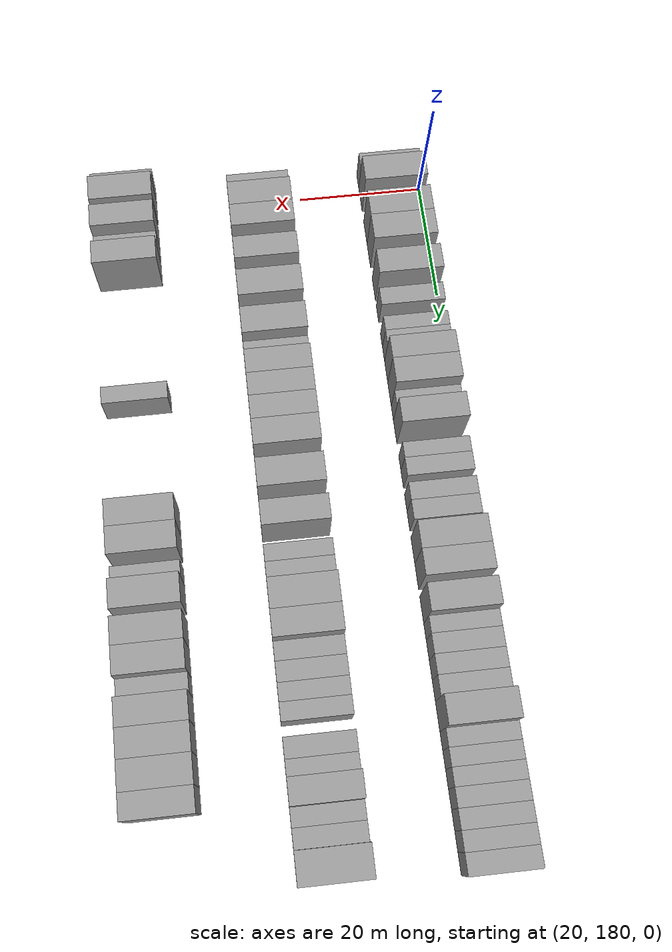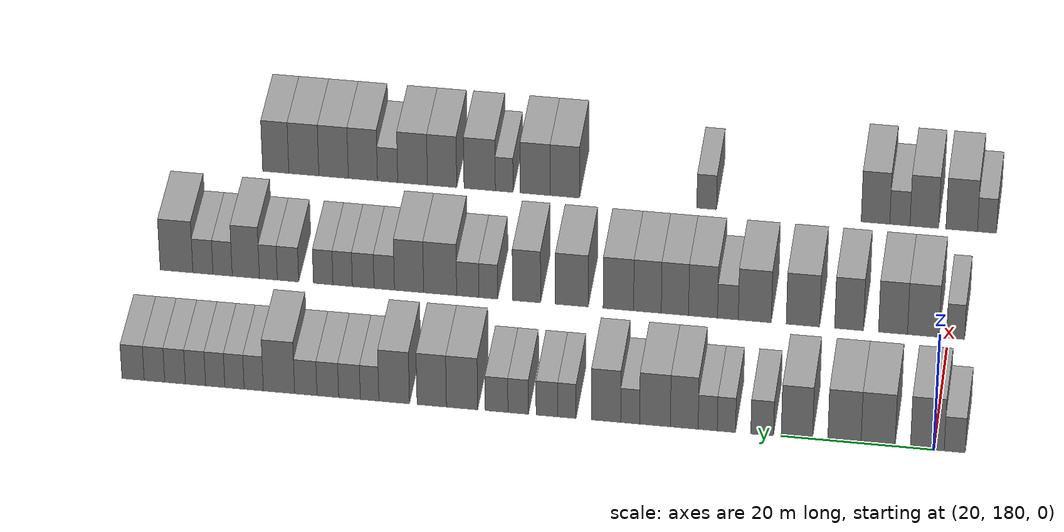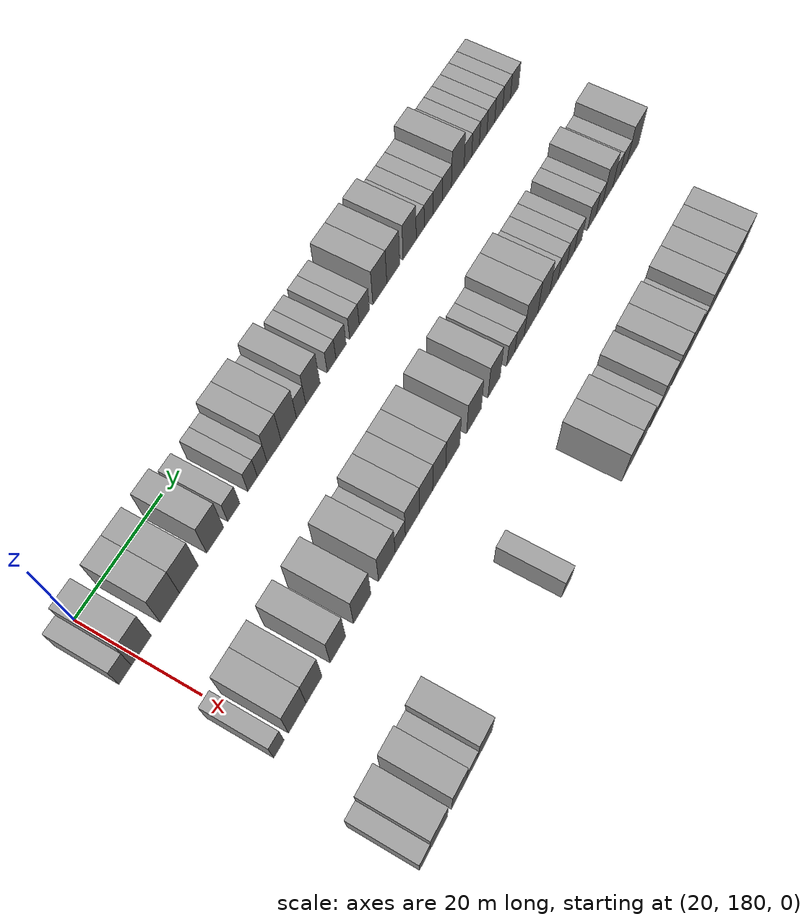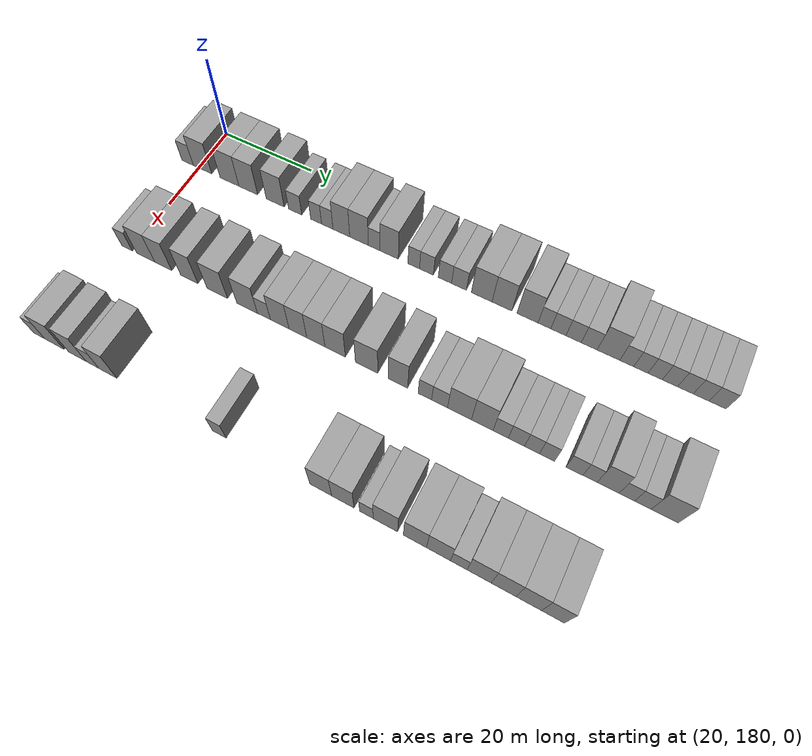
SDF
<sdf version="1.6">
 <world name="default">
  <model name="building_133">
   <static>1</static>
   <pose>25.0000 177.3653 0 0.000000 0.000000 0.000000</pose>
   <link name="link">
    <pose>0 0 3.00 0 0 0</pose>
    <collision name="collision"><geometry><box><size>10.0000 2.7550 6.0000</size></box></geometry></collision>
    <visual name="visual">
     <cast_shadows>0</cast_shadows>
     <geometry><box><size>10.0000 2.7550 6.0000</size></box></geometry>
     <material>
      <script>
       <uri>model://grey_wall/materials/scripts</uri>
       <uri>model://grey_wall/materials/textures</uri>
       <name>vrc/grey_wall</name>
      </script>
     </material>
    </visual>
   </link>
  </model>
  <model name="building_134">
   <static>1</static>
   <pose>25.0000 180.9439 0 0.000000 0.000000 0.000000</pose>
   <link name="link">
    <pose>0 0 4.50 0 0 0</pose>
    <collision name="collision"><geometry><box><size>10.0000 4.4023 9.0000</size></box></geometry></collision>
    <visual name="visual">
     <cast_shadows>0</cast_shadows>
     <geometry><box><size>10.0000 4.4023 9.0000</size></box></geometry>
     <material>
      <script>
       <uri>model://grey_wall/materials/scripts</uri>
       <uri>model://grey_wall/materials/textures</uri>
       <name>vrc/grey_wall</name>
      </script>
     </material>
    </visual>
   </link>
  </model>
  <model name="building_135">
   <static>1</static>
   <pose>25.0000 187.3601 0 0.000000 0.000000 0.000000</pose>
   <link name="link">
    <pose>0 0 4.50 0 0 0</pose>
    <collision name="collision"><geometry><box><size>10.0000 4.4300 9.0000</size></box></geometry></collision>
    <visual name="visual">
     <cast_shadows>0</cast_shadows>
     <geometry><box><size>10.0000 4.4300 9.0000</size></box></geometry>
     <material>
      <script>
       <uri>model://grey_wall/materials/scripts</uri>
       <uri>model://grey_wall/materials/textures</uri>
       <name>vrc/grey_wall</name>
      </script>
     </material>
    </visual>
   </link>
  </model>
  <model name="building_136">
   <static>1</static>
   <pose>25.0000 191.7448 0 0.000000 0.000000 0.000000</pose>
   <link name="link">
    <pose>0 0 4.50 0 0 0</pose>
    <collision name="collision"><geometry><box><size>10.0000 4.3393 9.0000</size></box></geometry></collision>
    <visual name="visual">
     <cast_shadows>0</cast_shadows>
     <geometry><box><size>10.0000 4.3393 9.0000</size></box></geometry>
     <material>
      <script>
       <uri>model://grey_wall/materials/scripts</uri>
       <uri>model://grey_wall/materials/textures</uri>
       <name>vrc/grey_wall</name>
      </script>
     </material>
    </visual>
   </link>
  </model>
  <model name="building_137">
   <static>1</static>
   <pose>25.0000 197.9644 0 0.000000 0.000000 0.000000</pose>
   <link name="link">
    <pose>0 0 4.50 0 0 0</pose>
    <collision name="collision"><geometry><box><size>10.0000 4.0999 9.0000</size></box></geometry></collision>
    <visual name="visual">
     <cast_shadows>0</cast_shadows>
     <geometry><box><size>10.0000 4.0999 9.0000</size></box></geometry>
     <material>
      <script>
       <uri>model://grey_wall/materials/scripts</uri>
       <uri>model://grey_wall/materials/textures</uri>
       <name>vrc/grey_wall</name>
      </script>
     </material>
    </visual>
   </link>
  </model>
  <model name="building_138">
   <static>1</static>
   <pose>25.0000 202.4989 0 0.000000 0.000000 0.000000</pose>
   <link name="link">
    <pose>0 0 3.00 0 0 0</pose>
    <collision name="collision"><geometry><box><size>10.0000 2.9692 6.0000</size></box></geometry></collision>
    <visual name="visual">
     <cast_shadows>0</cast_shadows>
     <geometry><box><size>10.0000 2.9692 6.0000</size></box></geometry>
     <material>
      <script>
       <uri>model://grey_wall/materials/scripts</uri>
       <uri>model://grey_wall/materials/textures</uri>
       <name>vrc/grey_wall</name>
      </script>
     </material>
    </visual>
   </link>
  </model>
  <model name="building_139">
   <static>1</static>
   <pose>25.0000 207.1845 0 0.000000 0.000000 0.000000</pose>
   <link name="link">
    <pose>0 0 3.00 0 0 0</pose>
    <collision name="collision"><geometry><box><size>10.0000 2.4019 6.0000</size></box></geometry></collision>
    <visual name="visual">
     <cast_shadows>0</cast_shadows>
     <geometry><box><size>10.0000 2.4019 6.0000</size></box></geometry>
     <material>
      <script>
       <uri>model://grey_wall/materials/scripts</uri>
       <uri>model://grey_wall/materials/textures</uri>
       <name>vrc/grey_wall</name>
      </script>
     </material>
    </visual>
   </link>
  </model>
  <model name="building_140">
   <static>1</static>
   <pose>25.0000 209.6355 0 0.000000 0.000000 0.000000</pose>
   <link name="link">
    <pose>0 0 3.00 0 0 0</pose>
    <collision name="collision"><geometry><box><size>10.0000 2.5001 6.0000</size></box></geometry></collision>
    <visual name="visual">
     <cast_shadows>0</cast_shadows>
     <geometry><box><size>10.0000 2.5001 6.0000</size></box></geometry>
     <material>
      <script>
       <uri>model://grey_wall/materials/scripts</uri>
       <uri>model://grey_wall/materials/textures</uri>
       <name>vrc/grey_wall</name>
      </script>
     </material>
    </visual>
   </link>
  </model>
  <model name="building_141">
   <static>1</static>
   <pose>25.0000 212.7090 0 0.000000 0.000000 0.000000</pose>
   <link name="link">
    <pose>0 0 4.50 0 0 0</pose>
    <collision name="collision"><geometry><box><size>10.0000 3.6468 9.0000</size></box></geometry></collision>
    <visual name="visual">
     <cast_shadows>0</cast_shadows>
     <geometry><box><size>10.0000 3.6468 9.0000</size></box></geometry>
     <material>
      <script>
       <uri>model://grey_wall/materials/scripts</uri>
       <uri>model://grey_wall/materials/textures</uri>
       <name>vrc/grey_wall</name>
      </script>
     </material>
    </visual>
   </link>
  </model>
  <model name="building_142">
   <static>1</static>
   <pose>25.0000 216.5469 0 0.000000 0.000000 0.000000</pose>
   <link name="link">
    <pose>0 0 4.50 0 0 0</pose>
    <collision name="collision"><geometry><box><size>10.0000 4.0290 9.0000</size></box></geometry></collision>
    <visual name="visual">
     <cast_shadows>0</cast_shadows>
     <geometry><box><size>10.0000 4.0290 9.0000</size></box></geometry>
     <material>
      <script>
       <uri>model://grey_wall/materials/scripts</uri>
       <uri>model://grey_wall/materials/textures</uri>
       <name>vrc/grey_wall</name>
      </script>
     </material>
    </visual>
   </link>
  </model>
  <model name="building_143">
   <static>1</static>
   <pose>25.0000 219.8091 0 0.000000 0.000000 0.000000</pose>
   <link name="link">
    <pose>0 0 3.00 0 0 0</pose>
    <collision name="collision"><geometry><box><size>10.0000 2.4954 6.0000</size></box></geometry></collision>
    <visual name="visual">
     <cast_shadows>0</cast_shadows>
     <geometry><box><size>10.0000 2.4954 6.0000</size></box></geometry>
     <material>
      <script>
       <uri>model://grey_wall/materials/scripts</uri>
       <uri>model://grey_wall/materials/textures</uri>
       <name>vrc/grey_wall</name>
      </script>
     </material>
    </visual>
   </link>
  </model>
  <model name="building_144">
   <static>1</static>
   <pose>25.0000 222.9866 0 0.000000 0.000000 0.000000</pose>
   <link name="link">
    <pose>0 0 4.50 0 0 0</pose>
    <collision name="collision"><geometry><box><size>10.0000 3.8596 9.0000</size></box></geometry></collision>
    <visual name="visual">
     <cast_shadows>0</cast_shadows>
     <geometry><box><size>10.0000 3.8596 9.0000</size></box></geometry>
     <material>
      <script>
       <uri>model://grey_wall/materials/scripts</uri>
       <uri>model://grey_wall/materials/textures</uri>
       <name>vrc/grey_wall</name>
      </script>
     </material>
    </visual>
   </link>
  </model>
  <model name="building_145">
   <static>1</static>
   <pose>25.0000 228.1262 0 0.000000 0.000000 0.000000</pose>
   <link name="link">
    <pose>0 0 3.00 0 0 0</pose>
    <collision name="collision"><geometry><box><size>10.0000 2.4196 6.0000</size></box></geometry></collision>
    <visual name="visual">
     <cast_shadows>0</cast_shadows>
     <geometry><box><size>10.0000 2.4196 6.0000</size></box></geometry>
     <material>
      <script>
       <uri>model://grey_wall/materials/scripts</uri>
       <uri>model://grey_wall/materials/textures</uri>
       <name>vrc/grey_wall</name>
      </script>
     </material>
    </visual>
   </link>
  </model>
  <model name="building_146">
   <static>1</static>
   <pose>25.0000 230.7642 0 0.000000 0.000000 0.000000</pose>
   <link name="link">
    <pose>0 0 3.00 0 0 0</pose>
    <collision name="collision"><geometry><box><size>10.0000 2.8565 6.0000</size></box></geometry></collision>
    <visual name="visual">
     <cast_shadows>0</cast_shadows>
     <geometry><box><size>10.0000 2.8565 6.0000</size></box></geometry>
     <material>
      <script>
       <uri>model://grey_wall/materials/scripts</uri>
       <uri>model://grey_wall/materials/textures</uri>
       <name>vrc/grey_wall</name>
      </script>
     </material>
    </visual>
   </link>
  </model>
  <model name="building_147">
   <static>1</static>
   <pose>25.0000 234.5485 0 0.000000 0.000000 0.000000</pose>
   <link name="link">
    <pose>0 0 3.00 0 0 0</pose>
    <collision name="collision"><geometry><box><size>10.0000 2.7121 6.0000</size></box></geometry></collision>
    <visual name="visual">
     <cast_shadows>0</cast_shadows>
     <geometry><box><size>10.0000 2.7121 6.0000</size></box></geometry>
     <material>
      <script>
       <uri>model://grey_wall/materials/scripts</uri>
       <uri>model://grey_wall/materials/textures</uri>
       <name>vrc/grey_wall</name>
      </script>
     </material>
    </visual>
   </link>
  </model>
  <model name="building_148">
   <static>1</static>
   <pose>25.0000 237.4010 0 0.000000 0.000000 0.000000</pose>
   <link name="link">
    <pose>0 0 3.00 0 0 0</pose>
    <collision name="collision"><geometry><box><size>10.0000 2.9927 6.0000</size></box></geometry></collision>
    <visual name="visual">
     <cast_shadows>0</cast_shadows>
     <geometry><box><size>10.0000 2.9927 6.0000</size></box></geometry>
     <material>
      <script>
       <uri>model://grey_wall/materials/scripts</uri>
       <uri>model://grey_wall/materials/textures</uri>
       <name>vrc/grey_wall</name>
      </script>
     </material>
    </visual>
   </link>
  </model>
  <model name="building_149">
   <static>1</static>
   <pose>25.0000 241.9610 0 0.000000 0.000000 0.000000</pose>
   <link name="link">
    <pose>0 0 4.50 0 0 0</pose>
    <collision name="collision"><geometry><box><size>10.0000 4.1274 9.0000</size></box></geometry></collision>
    <visual name="visual">
     <cast_shadows>0</cast_shadows>
     <geometry><box><size>10.0000 4.1274 9.0000</size></box></geometry>
     <material>
      <script>
       <uri>model://grey_wall/materials/scripts</uri>
       <uri>model://grey_wall/materials/textures</uri>
       <name>vrc/grey_wall</name>
      </script>
     </material>
    </visual>
   </link>
  </model>
  <model name="building_150">
   <static>1</static>
   <pose>25.0000 245.9690 0 0.000000 0.000000 0.000000</pose>
   <link name="link">
    <pose>0 0 4.50 0 0 0</pose>
    <collision name="collision"><geometry><box><size>10.0000 3.8886 9.0000</size></box></geometry></collision>
    <visual name="visual">
     <cast_shadows>0</cast_shadows>
     <geometry><box><size>10.0000 3.8886 9.0000</size></box></geometry>
     <material>
      <script>
       <uri>model://grey_wall/materials/scripts</uri>
       <uri>model://grey_wall/materials/textures</uri>
       <name>vrc/grey_wall</name>
      </script>
     </material>
    </visual>
   </link>
  </model>
  <model name="building_151">
   <static>1</static>
   <pose>25.0000 250.9404 0 0.000000 0.000000 0.000000</pose>
   <link name="link">
    <pose>0 0 4.50 0 0 0</pose>
    <collision name="collision"><geometry><box><size>10.0000 4.0543 9.0000</size></box></geometry></collision>
    <visual name="visual">
     <cast_shadows>0</cast_shadows>
     <geometry><box><size>10.0000 4.0543 9.0000</size></box></geometry>
     <material>
      <script>
       <uri>model://grey_wall/materials/scripts</uri>
       <uri>model://grey_wall/materials/textures</uri>
       <name>vrc/grey_wall</name>
      </script>
     </material>
    </visual>
   </link>
  </model>
  <model name="building_152">
   <static>1</static>
   <pose>25.0000 254.1960 0 0.000000 0.000000 0.000000</pose>
   <link name="link">
    <pose>0 0 3.00 0 0 0</pose>
    <collision name="collision"><geometry><box><size>10.0000 2.4568 6.0000</size></box></geometry></collision>
    <visual name="visual">
     <cast_shadows>0</cast_shadows>
     <geometry><box><size>10.0000 2.4568 6.0000</size></box></geometry>
     <material>
      <script>
       <uri>model://grey_wall/materials/scripts</uri>
       <uri>model://grey_wall/materials/textures</uri>
       <name>vrc/grey_wall</name>
      </script>
     </material>
    </visual>
   </link>
  </model>
  <model name="building_153">
   <static>1</static>
   <pose>25.0000 256.8638 0 0.000000 0.000000 0.000000</pose>
   <link name="link">
    <pose>0 0 3.00 0 0 0</pose>
    <collision name="collision"><geometry><box><size>10.0000 2.8788 6.0000</size></box></geometry></collision>
    <visual name="visual">
     <cast_shadows>0</cast_shadows>
     <geometry><box><size>10.0000 2.8788 6.0000</size></box></geometry>
     <material>
      <script>
       <uri>model://grey_wall/materials/scripts</uri>
       <uri>model://grey_wall/materials/textures</uri>
       <name>vrc/grey_wall</name>
      </script>
     </material>
    </visual>
   </link>
  </model>
  <model name="building_154">
   <static>1</static>
   <pose>25.0000 259.7369 0 0.000000 0.000000 0.000000</pose>
   <link name="link">
    <pose>0 0 3.00 0 0 0</pose>
    <collision name="collision"><geometry><box><size>10.0000 2.8675 6.0000</size></box></geometry></collision>
    <visual name="visual">
     <cast_shadows>0</cast_shadows>
     <geometry><box><size>10.0000 2.8675 6.0000</size></box></geometry>
     <material>
      <script>
       <uri>model://grey_wall/materials/scripts</uri>
       <uri>model://grey_wall/materials/textures</uri>
       <name>vrc/grey_wall</name>
      </script>
     </material>
    </visual>
   </link>
  </model>
  <model name="building_155">
   <static>1</static>
   <pose>25.0000 262.6521 0 0.000000 0.000000 0.000000</pose>
   <link name="link">
    <pose>0 0 3.00 0 0 0</pose>
    <collision name="collision"><geometry><box><size>10.0000 2.9629 6.0000</size></box></geometry></collision>
    <visual name="visual">
     <cast_shadows>0</cast_shadows>
     <geometry><box><size>10.0000 2.9629 6.0000</size></box></geometry>
     <material>
      <script>
       <uri>model://grey_wall/materials/scripts</uri>
       <uri>model://grey_wall/materials/textures</uri>
       <name>vrc/grey_wall</name>
      </script>
     </material>
    </visual>
   </link>
  </model>
  <model name="building_156">
   <static>1</static>
   <pose>25.0000 266.2186 0 0.000000 0.000000 0.000000</pose>
   <link name="link">
    <pose>0 0 4.50 0 0 0</pose>
    <collision name="collision"><geometry><box><size>10.0000 4.1701 9.0000</size></box></geometry></collision>
    <visual name="visual">
     <cast_shadows>0</cast_shadows>
     <geometry><box><size>10.0000 4.1701 9.0000</size></box></geometry>
     <material>
      <script>
       <uri>model://grey_wall/materials/scripts</uri>
       <uri>model://grey_wall/materials/textures</uri>
       <name>vrc/grey_wall</name>
      </script>
     </material>
    </visual>
   </link>
  </model>
  <model name="building_157">
   <static>1</static>
   <pose>25.0000 269.5779 0 0.000000 0.000000 0.000000</pose>
   <link name="link">
    <pose>0 0 3.00 0 0 0</pose>
    <collision name="collision"><geometry><box><size>10.0000 2.5486 6.0000</size></box></geometry></collision>
    <visual name="visual">
     <cast_shadows>0</cast_shadows>
     <geometry><box><size>10.0000 2.5486 6.0000</size></box></geometry>
     <material>
      <script>
       <uri>model://grey_wall/materials/scripts</uri>
       <uri>model://grey_wall/materials/textures</uri>
       <name>vrc/grey_wall</name>
      </script>
     </material>
    </visual>
   </link>
  </model>
  <model name="building_158">
   <static>1</static>
   <pose>25.0000 272.1346 0 0.000000 0.000000 0.000000</pose>
   <link name="link">
    <pose>0 0 3.00 0 0 0</pose>
    <collision name="collision"><geometry><box><size>10.0000 2.5648 6.0000</size></box></geometry></collision>
    <visual name="visual">
     <cast_shadows>0</cast_shadows>
     <geometry><box><size>10.0000 2.5648 6.0000</size></box></geometry>
     <material>
      <script>
       <uri>model://grey_wall/materials/scripts</uri>
       <uri>model://grey_wall/materials/textures</uri>
       <name>vrc/grey_wall</name>
      </script>
     </material>
    </visual>
   </link>
  </model>
  <model name="building_159">
   <static>1</static>
   <pose>25.0000 274.6965 0 0.000000 0.000000 0.000000</pose>
   <link name="link">
    <pose>0 0 3.00 0 0 0</pose>
    <collision name="collision"><geometry><box><size>10.0000 2.5590 6.0000</size></box></geometry></collision>
    <visual name="visual">
     <cast_shadows>0</cast_shadows>
     <geometry><box><size>10.0000 2.5590 6.0000</size></box></geometry>
     <material>
      <script>
       <uri>model://grey_wall/materials/scripts</uri>
       <uri>model://grey_wall/materials/textures</uri>
       <name>vrc/grey_wall</name>
      </script>
     </material>
    </visual>
   </link>
  </model>
  <model name="building_160">
   <static>1</static>
   <pose>25.0000 277.3248 0 0.000000 0.000000 0.000000</pose>
   <link name="link">
    <pose>0 0 3.00 0 0 0</pose>
    <collision name="collision"><geometry><box><size>10.0000 2.6975 6.0000</size></box></geometry></collision>
    <visual name="visual">
     <cast_shadows>0</cast_shadows>
     <geometry><box><size>10.0000 2.6975 6.0000</size></box></geometry>
     <material>
      <script>
       <uri>model://grey_wall/materials/scripts</uri>
       <uri>model://grey_wall/materials/textures</uri>
       <name>vrc/grey_wall</name>
      </script>
     </material>
    </visual>
   </link>
  </model>
  <model name="building_161">
   <static>1</static>
   <pose>25.0000 280.0527 0 0.000000 0.000000 0.000000</pose>
   <link name="link">
    <pose>0 0 3.00 0 0 0</pose>
    <collision name="collision"><geometry><box><size>10.0000 2.7583 6.0000</size></box></geometry></collision>
    <visual name="visual">
     <cast_shadows>0</cast_shadows>
     <geometry><box><size>10.0000 2.7583 6.0000</size></box></geometry>
     <material>
      <script>
       <uri>model://grey_wall/materials/scripts</uri>
       <uri>model://grey_wall/materials/textures</uri>
       <name>vrc/grey_wall</name>
      </script>
     </material>
    </visual>
   </link>
  </model>
  <model name="building_162">
   <static>1</static>
   <pose>25.0000 282.8000 0 0.000000 0.000000 0.000000</pose>
   <link name="link">
    <pose>0 0 3.00 0 0 0</pose>
    <collision name="collision"><geometry><box><size>10.0000 2.7363 6.0000</size></box></geometry></collision>
    <visual name="visual">
     <cast_shadows>0</cast_shadows>
     <geometry><box><size>10.0000 2.7363 6.0000</size></box></geometry>
     <material>
      <script>
       <uri>model://grey_wall/materials/scripts</uri>
       <uri>model://grey_wall/materials/textures</uri>
       <name>vrc/grey_wall</name>
      </script>
     </material>
    </visual>
   </link>
  </model>
  <model name="building_163">
   <static>1</static>
   <pose>25.0000 285.6499 0 0.000000 0.000000 0.000000</pose>
   <link name="link">
    <pose>0 0 3.00 0 0 0</pose>
    <collision name="collision"><geometry><box><size>10.0000 2.9635 6.0000</size></box></geometry></collision>
    <visual name="visual">
     <cast_shadows>0</cast_shadows>
     <geometry><box><size>10.0000 2.9635 6.0000</size></box></geometry>
     <material>
      <script>
       <uri>model://grey_wall/materials/scripts</uri>
       <uri>model://grey_wall/materials/textures</uri>
       <name>vrc/grey_wall</name>
      </script>
     </material>
    </visual>
   </link>
  </model>
  <model name="building_318">
   <static>1</static>
   <pose>47.0000 179.0964 0 0.000000 0.000000 0.000000</pose>
   <link name="link">
    <pose>0 0 3.00 0 0 0</pose>
    <collision name="collision"><geometry><box><size>10.0000 2.4077 6.0000</size></box></geometry></collision>
    <visual name="visual">
     <cast_shadows>0</cast_shadows>
     <geometry><box><size>10.0000 2.4077 6.0000</size></box></geometry>
     <material>
      <script>
       <uri>model://grey_wall/materials/scripts</uri>
       <uri>model://grey_wall/materials/textures</uri>
       <name>vrc/grey_wall</name>
      </script>
     </material>
    </visual>
   </link>
  </model>
  <model name="building_319">
   <static>1</static>
   <pose>47.0000 183.3885 0 0.000000 0.000000 0.000000</pose>
   <link name="link">
    <pose>0 0 4.50 0 0 0</pose>
    <collision name="collision"><geometry><box><size>10.0000 4.1765 9.0000</size></box></geometry></collision>
    <visual name="visual">
     <cast_shadows>0</cast_shadows>
     <geometry><box><size>10.0000 4.1765 9.0000</size></box></geometry>
     <material>
      <script>
       <uri>model://grey_wall/materials/scripts</uri>
       <uri>model://grey_wall/materials/textures</uri>
       <name>vrc/grey_wall</name>
      </script>
     </material>
    </visual>
   </link>
  </model>
  <model name="building_320">
   <static>1</static>
   <pose>47.0000 187.4040 0 0.000000 0.000000 0.000000</pose>
   <link name="link">
    <pose>0 0 4.50 0 0 0</pose>
    <collision name="collision"><geometry><box><size>10.0000 3.8545 9.0000</size></box></geometry></collision>
    <visual name="visual">
     <cast_shadows>0</cast_shadows>
     <geometry><box><size>10.0000 3.8545 9.0000</size></box></geometry>
     <material>
      <script>
       <uri>model://grey_wall/materials/scripts</uri>
       <uri>model://grey_wall/materials/textures</uri>
       <name>vrc/grey_wall</name>
      </script>
     </material>
    </visual>
   </link>
  </model>
  <model name="building_321">
   <static>1</static>
   <pose>47.0000 193.2502 0 0.000000 0.000000 0.000000</pose>
   <link name="link">
    <pose>0 0 4.50 0 0 0</pose>
    <collision name="collision"><geometry><box><size>10.0000 3.8380 9.0000</size></box></geometry></collision>
    <visual name="visual">
     <cast_shadows>0</cast_shadows>
     <geometry><box><size>10.0000 3.8380 9.0000</size></box></geometry>
     <material>
      <script>
       <uri>model://grey_wall/materials/scripts</uri>
       <uri>model://grey_wall/materials/textures</uri>
       <name>vrc/grey_wall</name>
      </script>
     </material>
    </visual>
   </link>
  </model>
  <model name="building_322">
   <static>1</static>
   <pose>47.0000 199.4006 0 0.000000 0.000000 0.000000</pose>
   <link name="link">
    <pose>0 0 4.50 0 0 0</pose>
    <collision name="collision"><geometry><box><size>10.0000 4.4628 9.0000</size></box></geometry></collision>
    <visual name="visual">
     <cast_shadows>0</cast_shadows>
     <geometry><box><size>10.0000 4.4628 9.0000</size></box></geometry>
     <material>
      <script>
       <uri>model://grey_wall/materials/scripts</uri>
       <uri>model://grey_wall/materials/textures</uri>
       <name>vrc/grey_wall</name>
      </script>
     </material>
    </visual>
   </link>
  </model>
  <model name="building_323">
   <static>1</static>
   <pose>47.0000 205.8380 0 0.000000 0.000000 0.000000</pose>
   <link name="link">
    <pose>0 0 4.50 0 0 0</pose>
    <collision name="collision"><geometry><box><size>10.0000 4.4119 9.0000</size></box></geometry></collision>
    <visual name="visual">
     <cast_shadows>0</cast_shadows>
     <geometry><box><size>10.0000 4.4119 9.0000</size></box></geometry>
     <material>
      <script>
       <uri>model://grey_wall/materials/scripts</uri>
       <uri>model://grey_wall/materials/textures</uri>
       <name>vrc/grey_wall</name>
      </script>
     </material>
    </visual>
   </link>
  </model>
  <model name="building_324">
   <static>1</static>
   <pose>47.0000 209.4214 0 0.000000 0.000000 0.000000</pose>
   <link name="link">
    <pose>0 0 3.00 0 0 0</pose>
    <collision name="collision"><geometry><box><size>10.0000 2.7551 6.0000</size></box></geometry></collision>
    <visual name="visual">
     <cast_shadows>0</cast_shadows>
     <geometry><box><size>10.0000 2.7551 6.0000</size></box></geometry>
     <material>
      <script>
       <uri>model://grey_wall/materials/scripts</uri>
       <uri>model://grey_wall/materials/textures</uri>
       <name>vrc/grey_wall</name>
      </script>
     </material>
    </visual>
   </link>
  </model>
  <model name="building_325">
   <static>1</static>
   <pose>47.0000 212.7383 0 0.000000 0.000000 0.000000</pose>
   <link name="link">
    <pose>0 0 4.50 0 0 0</pose>
    <collision name="collision"><geometry><box><size>10.0000 3.8786 9.0000</size></box></geometry></collision>
    <visual name="visual">
     <cast_shadows>0</cast_shadows>
     <geometry><box><size>10.0000 3.8786 9.0000</size></box></geometry>
     <material>
      <script>
       <uri>model://grey_wall/materials/scripts</uri>
       <uri>model://grey_wall/materials/textures</uri>
       <name>vrc/grey_wall</name>
      </script>
     </material>
    </visual>
   </link>
  </model>
  <model name="building_326">
   <static>1</static>
   <pose>47.0000 216.5075 0 0.000000 0.000000 0.000000</pose>
   <link name="link">
    <pose>0 0 4.50 0 0 0</pose>
    <collision name="collision"><geometry><box><size>10.0000 3.6599 9.0000</size></box></geometry></collision>
    <visual name="visual">
     <cast_shadows>0</cast_shadows>
     <geometry><box><size>10.0000 3.6599 9.0000</size></box></geometry>
     <material>
      <script>
       <uri>model://grey_wall/materials/scripts</uri>
       <uri>model://grey_wall/materials/textures</uri>
       <name>vrc/grey_wall</name>
      </script>
     </material>
    </visual>
   </link>
  </model>
  <model name="building_327">
   <static>1</static>
   <pose>47.0000 220.1936 0 0.000000 0.000000 0.000000</pose>
   <link name="link">
    <pose>0 0 4.50 0 0 0</pose>
    <collision name="collision"><geometry><box><size>10.0000 3.7123 9.0000</size></box></geometry></collision>
    <visual name="visual">
     <cast_shadows>0</cast_shadows>
     <geometry><box><size>10.0000 3.7123 9.0000</size></box></geometry>
     <material>
      <script>
       <uri>model://grey_wall/materials/scripts</uri>
       <uri>model://grey_wall/materials/textures</uri>
       <name>vrc/grey_wall</name>
      </script>
     </material>
    </visual>
   </link>
  </model>
  <model name="building_328">
   <static>1</static>
   <pose>47.0000 224.0951 0 0.000000 0.000000 0.000000</pose>
   <link name="link">
    <pose>0 0 4.50 0 0 0</pose>
    <collision name="collision"><geometry><box><size>10.0000 4.0907 9.0000</size></box></geometry></collision>
    <visual name="visual">
     <cast_shadows>0</cast_shadows>
     <geometry><box><size>10.0000 4.0907 9.0000</size></box></geometry>
     <material>
      <script>
       <uri>model://grey_wall/materials/scripts</uri>
       <uri>model://grey_wall/materials/textures</uri>
       <name>vrc/grey_wall</name>
      </script>
     </material>
    </visual>
   </link>
  </model>
  <model name="building_329">
   <static>1</static>
   <pose>47.0000 230.3417 0 0.000000 0.000000 0.000000</pose>
   <link name="link">
    <pose>0 0 4.50 0 0 0</pose>
    <collision name="collision"><geometry><box><size>10.0000 4.4025 9.0000</size></box></geometry></collision>
    <visual name="visual">
     <cast_shadows>0</cast_shadows>
     <geometry><box><size>10.0000 4.4025 9.0000</size></box></geometry>
     <material>
      <script>
       <uri>model://grey_wall/materials/scripts</uri>
       <uri>model://grey_wall/materials/textures</uri>
       <name>vrc/grey_wall</name>
      </script>
     </material>
    </visual>
   </link>
  </model>
  <model name="building_330">
   <static>1</static>
   <pose>47.0000 236.4284 0 0.000000 0.000000 0.000000</pose>
   <link name="link">
    <pose>0 0 4.50 0 0 0</pose>
    <collision name="collision"><geometry><box><size>10.0000 3.7709 9.0000</size></box></geometry></collision>
    <visual name="visual">
     <cast_shadows>0</cast_shadows>
     <geometry><box><size>10.0000 3.7709 9.0000</size></box></geometry>
     <material>
      <script>
       <uri>model://grey_wall/materials/scripts</uri>
       <uri>model://grey_wall/materials/textures</uri>
       <name>vrc/grey_wall</name>
      </script>
     </material>
    </visual>
   </link>
  </model>
  <model name="building_331">
   <static>1</static>
   <pose>47.0000 241.5881 0 0.000000 0.000000 0.000000</pose>
   <link name="link">
    <pose>0 0 3.00 0 0 0</pose>
    <collision name="collision"><geometry><box><size>10.0000 2.5483 6.0000</size></box></geometry></collision>
    <visual name="visual">
     <cast_shadows>0</cast_shadows>
     <geometry><box><size>10.0000 2.5483 6.0000</size></box></geometry>
     <material>
      <script>
       <uri>model://grey_wall/materials/scripts</uri>
       <uri>model://grey_wall/materials/textures</uri>
       <name>vrc/grey_wall</name>
      </script>
     </material>
    </visual>
   </link>
  </model>
  <model name="building_332">
   <static>1</static>
   <pose>47.0000 244.3534 0 0.000000 0.000000 0.000000</pose>
   <link name="link">
    <pose>0 0 3.00 0 0 0</pose>
    <collision name="collision"><geometry><box><size>10.0000 2.9823 6.0000</size></box></geometry></collision>
    <visual name="visual">
     <cast_shadows>0</cast_shadows>
     <geometry><box><size>10.0000 2.9823 6.0000</size></box></geometry>
     <material>
      <script>
       <uri>model://grey_wall/materials/scripts</uri>
       <uri>model://grey_wall/materials/textures</uri>
       <name>vrc/grey_wall</name>
      </script>
     </material>
    </visual>
   </link>
  </model>
  <model name="building_333">
   <static>1</static>
   <pose>47.0000 248.0723 0 0.000000 0.000000 0.000000</pose>
   <link name="link">
    <pose>0 0 4.50 0 0 0</pose>
    <collision name="collision"><geometry><box><size>10.0000 4.4555 9.0000</size></box></geometry></collision>
    <visual name="visual">
     <cast_shadows>0</cast_shadows>
     <geometry><box><size>10.0000 4.4555 9.0000</size></box></geometry>
     <material>
      <script>
       <uri>model://grey_wall/materials/scripts</uri>
       <uri>model://grey_wall/materials/textures</uri>
       <name>vrc/grey_wall</name>
      </script>
     </material>
    </visual>
   </link>
  </model>
  <model name="building_334">
   <static>1</static>
   <pose>47.0000 252.2706 0 0.000000 0.000000 0.000000</pose>
   <link name="link">
    <pose>0 0 4.50 0 0 0</pose>
    <collision name="collision"><geometry><box><size>10.0000 3.9410 9.0000</size></box></geometry></collision>
    <visual name="visual">
     <cast_shadows>0</cast_shadows>
     <geometry><box><size>10.0000 3.9410 9.0000</size></box></geometry>
     <material>
      <script>
       <uri>model://grey_wall/materials/scripts</uri>
       <uri>model://grey_wall/materials/textures</uri>
       <name>vrc/grey_wall</name>
      </script>
     </material>
    </visual>
   </link>
  </model>
  <model name="building_335">
   <static>1</static>
   <pose>47.0000 255.6231 0 0.000000 0.000000 0.000000</pose>
   <link name="link">
    <pose>0 0 3.00 0 0 0</pose>
    <collision name="collision"><geometry><box><size>10.0000 2.7640 6.0000</size></box></geometry></collision>
    <visual name="visual">
     <cast_shadows>0</cast_shadows>
     <geometry><box><size>10.0000 2.7640 6.0000</size></box></geometry>
     <material>
      <script>
       <uri>model://grey_wall/materials/scripts</uri>
       <uri>model://grey_wall/materials/textures</uri>
       <name>vrc/grey_wall</name>
      </script>
     </material>
    </visual>
   </link>
  </model>
  <model name="building_336">
   <static>1</static>
   <pose>47.0000 258.4677 0 0.000000 0.000000 0.000000</pose>
   <link name="link">
    <pose>0 0 3.00 0 0 0</pose>
    <collision name="collision"><geometry><box><size>10.0000 2.9253 6.0000</size></box></geometry></collision>
    <visual name="visual">
     <cast_shadows>0</cast_shadows>
     <geometry><box><size>10.0000 2.9253 6.0000</size></box></geometry>
     <material>
      <script>
       <uri>model://grey_wall/materials/scripts</uri>
       <uri>model://grey_wall/materials/textures</uri>
       <name>vrc/grey_wall</name>
      </script>
     </material>
    </visual>
   </link>
  </model>
  <model name="building_337">
   <static>1</static>
   <pose>47.0000 261.2442 0 0.000000 0.000000 0.000000</pose>
   <link name="link">
    <pose>0 0 3.00 0 0 0</pose>
    <collision name="collision"><geometry><box><size>10.0000 2.6276 6.0000</size></box></geometry></collision>
    <visual name="visual">
     <cast_shadows>0</cast_shadows>
     <geometry><box><size>10.0000 2.6276 6.0000</size></box></geometry>
     <material>
      <script>
       <uri>model://grey_wall/materials/scripts</uri>
       <uri>model://grey_wall/materials/textures</uri>
       <name>vrc/grey_wall</name>
      </script>
     </material>
    </visual>
   </link>
  </model>
  <model name="building_338">
   <static>1</static>
   <pose>47.0000 263.8797 0 0.000000 0.000000 0.000000</pose>
   <link name="link">
    <pose>0 0 3.00 0 0 0</pose>
    <collision name="collision"><geometry><box><size>10.0000 2.6434 6.0000</size></box></geometry></collision>
    <visual name="visual">
     <cast_shadows>0</cast_shadows>
     <geometry><box><size>10.0000 2.6434 6.0000</size></box></geometry>
     <material>
      <script>
       <uri>model://grey_wall/materials/scripts</uri>
       <uri>model://grey_wall/materials/textures</uri>
       <name>vrc/grey_wall</name>
      </script>
     </material>
    </visual>
   </link>
  </model>
  <model name="building_339">
   <static>1</static>
   <pose>47.0000 268.6510 0 0.000000 0.000000 0.000000</pose>
   <link name="link">
    <pose>0 0 3.00 0 0 0</pose>
    <collision name="collision"><geometry><box><size>10.0000 2.8993 6.0000</size></box></geometry></collision>
    <visual name="visual">
     <cast_shadows>0</cast_shadows>
     <geometry><box><size>10.0000 2.8993 6.0000</size></box></geometry>
     <material>
      <script>
       <uri>model://grey_wall/materials/scripts</uri>
       <uri>model://grey_wall/materials/textures</uri>
       <name>vrc/grey_wall</name>
      </script>
     </material>
    </visual>
   </link>
  </model>
  <model name="building_340">
   <static>1</static>
   <pose>47.0000 271.3141 0 0.000000 0.000000 0.000000</pose>
   <link name="link">
    <pose>0 0 3.00 0 0 0</pose>
    <collision name="collision"><geometry><box><size>10.0000 2.4270 6.0000</size></box></geometry></collision>
    <visual name="visual">
     <cast_shadows>0</cast_shadows>
     <geometry><box><size>10.0000 2.4270 6.0000</size></box></geometry>
     <material>
      <script>
       <uri>model://grey_wall/materials/scripts</uri>
       <uri>model://grey_wall/materials/textures</uri>
       <name>vrc/grey_wall</name>
      </script>
     </material>
    </visual>
   </link>
  </model>
  <model name="building_341">
   <static>1</static>
   <pose>47.0000 274.3747 0 0.000000 0.000000 0.000000</pose>
   <link name="link">
    <pose>0 0 4.50 0 0 0</pose>
    <collision name="collision"><geometry><box><size>10.0000 3.6941 9.0000</size></box></geometry></collision>
    <visual name="visual">
     <cast_shadows>0</cast_shadows>
     <geometry><box><size>10.0000 3.6941 9.0000</size></box></geometry>
     <material>
      <script>
       <uri>model://grey_wall/materials/scripts</uri>
       <uri>model://grey_wall/materials/textures</uri>
       <name>vrc/grey_wall</name>
      </script>
     </material>
    </visual>
   </link>
  </model>
  <model name="building_342">
   <static>1</static>
   <pose>47.0000 277.5287 0 0.000000 0.000000 0.000000</pose>
   <link name="link">
    <pose>0 0 3.00 0 0 0</pose>
    <collision name="collision"><geometry><box><size>10.0000 2.6140 6.0000</size></box></geometry></collision>
    <visual name="visual">
     <cast_shadows>0</cast_shadows>
     <geometry><box><size>10.0000 2.6140 6.0000</size></box></geometry>
     <material>
      <script>
       <uri>model://grey_wall/materials/scripts</uri>
       <uri>model://grey_wall/materials/textures</uri>
       <name>vrc/grey_wall</name>
      </script>
     </material>
    </visual>
   </link>
  </model>
  <model name="building_343">
   <static>1</static>
   <pose>47.0000 280.1992 0 0.000000 0.000000 0.000000</pose>
   <link name="link">
    <pose>0 0 3.00 0 0 0</pose>
    <collision name="collision"><geometry><box><size>10.0000 2.7270 6.0000</size></box></geometry></collision>
    <visual name="visual">
     <cast_shadows>0</cast_shadows>
     <geometry><box><size>10.0000 2.7270 6.0000</size></box></geometry>
     <material>
      <script>
       <uri>model://grey_wall/materials/scripts</uri>
       <uri>model://grey_wall/materials/textures</uri>
       <name>vrc/grey_wall</name>
      </script>
     </material>
    </visual>
   </link>
  </model>
  <model name="building_344">
   <static>1</static>
   <pose>47.0000 283.7846 0 0.000000 0.000000 0.000000</pose>
   <link name="link">
    <pose>0 0 4.50 0 0 0</pose>
    <collision name="collision"><geometry><box><size>10.0000 4.4437 9.0000</size></box></geometry></collision>
    <visual name="visual">
     <cast_shadows>0</cast_shadows>
     <geometry><box><size>10.0000 4.4437 9.0000</size></box></geometry>
     <material>
      <script>
       <uri>model://grey_wall/materials/scripts</uri>
       <uri>model://grey_wall/materials/textures</uri>
       <name>vrc/grey_wall</name>
      </script>
     </material>
    </visual>
   </link>
  </model>
  <model name="building_509">
   <static>1</static>
   <pose>69.0000 176.6699 0 0.000000 0.000000 0.000000</pose>
   <link name="link">
    <pose>0 0 3.00 0 0 0</pose>
    <collision name="collision"><geometry><box><size>10.0000 2.5866 6.0000</size></box></geometry></collision>
    <visual name="visual">
     <cast_shadows>0</cast_shadows>
     <geometry><box><size>10.0000 2.5866 6.0000</size></box></geometry>
     <material>
      <script>
       <uri>model://grey_wall/materials/scripts</uri>
       <uri>model://grey_wall/materials/textures</uri>
       <name>vrc/grey_wall</name>
      </script>
     </material>
    </visual>
   </link>
  </model>
  <model name="building_510">
   <static>1</static>
   <pose>69.0000 180.0949 0 0.000000 0.000000 0.000000</pose>
   <link name="link">
    <pose>0 0 4.50 0 0 0</pose>
    <collision name="collision"><geometry><box><size>10.0000 4.2635 9.0000</size></box></geometry></collision>
    <visual name="visual">
     <cast_shadows>0</cast_shadows>
     <geometry><box><size>10.0000 4.2635 9.0000</size></box></geometry>
     <material>
      <script>
       <uri>model://grey_wall/materials/scripts</uri>
       <uri>model://grey_wall/materials/textures</uri>
       <name>vrc/grey_wall</name>
      </script>
     </material>
    </visual>
   </link>
  </model>
  <model name="building_511">
   <static>1</static>
   <pose>69.0000 185.1601 0 0.000000 0.000000 0.000000</pose>
   <link name="link">
    <pose>0 0 4.50 0 0 0</pose>
    <collision name="collision"><geometry><box><size>10.0000 3.8669 9.0000</size></box></geometry></collision>
    <visual name="visual">
     <cast_shadows>0</cast_shadows>
     <geometry><box><size>10.0000 3.8669 9.0000</size></box></geometry>
     <material>
      <script>
       <uri>model://grey_wall/materials/scripts</uri>
       <uri>model://grey_wall/materials/textures</uri>
       <name>vrc/grey_wall</name>
      </script>
     </material>
    </visual>
   </link>
  </model>
  <model name="building_512">
   <static>1</static>
   <pose>69.0000 188.4677 0 0.000000 0.000000 0.000000</pose>
   <link name="link">
    <pose>0 0 3.00 0 0 0</pose>
    <collision name="collision"><geometry><box><size>10.0000 2.7484 6.0000</size></box></geometry></collision>
    <visual name="visual">
     <cast_shadows>0</cast_shadows>
     <geometry><box><size>10.0000 2.7484 6.0000</size></box></geometry>
     <material>
      <script>
       <uri>model://grey_wall/materials/scripts</uri>
       <uri>model://grey_wall/materials/textures</uri>
       <name>vrc/grey_wall</name>
      </script>
     </material>
    </visual>
   </link>
  </model>
  <model name="building_513">
   <static>1</static>
   <pose>69.0000 191.7796 0 0.000000 0.000000 0.000000</pose>
   <link name="link">
    <pose>0 0 4.50 0 0 0</pose>
    <collision name="collision"><geometry><box><size>10.0000 3.8753 9.0000</size></box></geometry></collision>
    <visual name="visual">
     <cast_shadows>0</cast_shadows>
     <geometry><box><size>10.0000 3.8753 9.0000</size></box></geometry>
     <material>
      <script>
       <uri>model://grey_wall/materials/scripts</uri>
       <uri>model://grey_wall/materials/textures</uri>
       <name>vrc/grey_wall</name>
      </script>
     </material>
    </visual>
   </link>
  </model>
  <model name="building_514">
   <static>1</static>
   <pose>69.0000 214.7545 0 0.000000 0.000000 0.000000</pose>
   <link name="link">
    <pose>0 0 3.00 0 0 0</pose>
    <collision name="collision"><geometry><box><size>10.0000 2.6915 6.0000</size></box></geometry></collision>
    <visual name="visual">
     <cast_shadows>0</cast_shadows>
     <geometry><box><size>10.0000 2.6915 6.0000</size></box></geometry>
     <material>
      <script>
       <uri>model://grey_wall/materials/scripts</uri>
       <uri>model://grey_wall/materials/textures</uri>
       <name>vrc/grey_wall</name>
      </script>
     </material>
    </visual>
   </link>
  </model>
  <model name="building_515">
   <static>1</static>
   <pose>69.0000 234.1579 0 0.000000 0.000000 0.000000</pose>
   <link name="link">
    <pose>0 0 4.50 0 0 0</pose>
    <collision name="collision"><geometry><box><size>10.0000 4.0385 9.0000</size></box></geometry></collision>
    <visual name="visual">
     <cast_shadows>0</cast_shadows>
     <geometry><box><size>10.0000 4.0385 9.0000</size></box></geometry>
     <material>
      <script>
       <uri>model://grey_wall/materials/scripts</uri>
       <uri>model://grey_wall/materials/textures</uri>
       <name>vrc/grey_wall</name>
      </script>
     </material>
    </visual>
   </link>
  </model>
  <model name="building_516">
   <static>1</static>
   <pose>69.0000 238.2220 0 0.000000 0.000000 0.000000</pose>
   <link name="link">
    <pose>0 0 4.50 0 0 0</pose>
    <collision name="collision"><geometry><box><size>10.0000 4.0897 9.0000</size></box></geometry></collision>
    <visual name="visual">
     <cast_shadows>0</cast_shadows>
     <geometry><box><size>10.0000 4.0897 9.0000</size></box></geometry>
     <material>
      <script>
       <uri>model://grey_wall/materials/scripts</uri>
       <uri>model://grey_wall/materials/textures</uri>
       <name>vrc/grey_wall</name>
      </script>
     </material>
    </visual>
   </link>
  </model>
  <model name="building_517">
   <static>1</static>
   <pose>69.0000 242.4842 0 0.000000 0.000000 0.000000</pose>
   <link name="link">
    <pose>0 0 3.00 0 0 0</pose>
    <collision name="collision"><geometry><box><size>10.0000 2.4347 6.0000</size></box></geometry></collision>
    <visual name="visual">
     <cast_shadows>0</cast_shadows>
     <geometry><box><size>10.0000 2.4347 6.0000</size></box></geometry>
     <material>
      <script>
       <uri>model://grey_wall/materials/scripts</uri>
       <uri>model://grey_wall/materials/textures</uri>
       <name>vrc/grey_wall</name>
      </script>
     </material>
    </visual>
   </link>
  </model>
  <model name="building_518">
   <static>1</static>
   <pose>69.0000 245.8550 0 0.000000 0.000000 0.000000</pose>
   <link name="link">
    <pose>0 0 4.50 0 0 0</pose>
    <collision name="collision"><geometry><box><size>10.0000 4.3069 9.0000</size></box></geometry></collision>
    <visual name="visual">
     <cast_shadows>0</cast_shadows>
     <geometry><box><size>10.0000 4.3069 9.0000</size></box></geometry>
     <material>
      <script>
       <uri>model://grey_wall/materials/scripts</uri>
       <uri>model://grey_wall/materials/textures</uri>
       <name>vrc/grey_wall</name>
      </script>
     </material>
    </visual>
   </link>
  </model>
  <model name="building_519">
   <static>1</static>
   <pose>69.0000 251.0198 0 0.000000 0.000000 0.000000</pose>
   <link name="link">
    <pose>0 0 4.50 0 0 0</pose>
    <collision name="collision"><geometry><box><size>10.0000 4.0227 9.0000</size></box></geometry></collision>
    <visual name="visual">
     <cast_shadows>0</cast_shadows>
     <geometry><box><size>10.0000 4.0227 9.0000</size></box></geometry>
     <material>
      <script>
       <uri>model://grey_wall/materials/scripts</uri>
       <uri>model://grey_wall/materials/textures</uri>
       <name>vrc/grey_wall</name>
      </script>
     </material>
    </visual>
   </link>
  </model>
  <model name="building_520">
   <static>1</static>
   <pose>69.0000 255.0822 0 0.000000 0.000000 0.000000</pose>
   <link name="link">
    <pose>0 0 4.50 0 0 0</pose>
    <collision name="collision"><geometry><box><size>10.0000 4.1023 9.0000</size></box></geometry></collision>
    <visual name="visual">
     <cast_shadows>0</cast_shadows>
     <geometry><box><size>10.0000 4.1023 9.0000</size></box></geometry>
     <material>
      <script>
       <uri>model://grey_wall/materials/scripts</uri>
       <uri>model://grey_wall/materials/textures</uri>
       <name>vrc/grey_wall</name>
      </script>
     </material>
    </visual>
   </link>
  </model>
  <model name="building_521">
   <static>1</static>
   <pose>69.0000 258.5298 0 0.000000 0.000000 0.000000</pose>
   <link name="link">
    <pose>0 0 3.00 0 0 0</pose>
    <collision name="collision"><geometry><box><size>10.0000 2.7928 6.0000</size></box></geometry></collision>
    <visual name="visual">
     <cast_shadows>0</cast_shadows>
     <geometry><box><size>10.0000 2.7928 6.0000</size></box></geometry>
     <material>
      <script>
       <uri>model://grey_wall/materials/scripts</uri>
       <uri>model://grey_wall/materials/textures</uri>
       <name>vrc/grey_wall</name>
      </script>
     </material>
    </visual>
   </link>
  </model>
  <model name="building_522">
   <static>1</static>
   <pose>69.0000 261.9354 0 0.000000 0.000000 0.000000</pose>
   <link name="link">
    <pose>0 0 4.50 0 0 0</pose>
    <collision name="collision"><geometry><box><size>10.0000 4.0185 9.0000</size></box></geometry></collision>
    <visual name="visual">
     <cast_shadows>0</cast_shadows>
     <geometry><box><size>10.0000 4.0185 9.0000</size></box></geometry>
     <material>
      <script>
       <uri>model://grey_wall/materials/scripts</uri>
       <uri>model://grey_wall/materials/textures</uri>
       <name>vrc/grey_wall</name>
      </script>
     </material>
    </visual>
   </link>
  </model>
  <model name="building_523">
   <static>1</static>
   <pose>69.0000 265.9825 0 0.000000 0.000000 0.000000</pose>
   <link name="link">
    <pose>0 0 4.50 0 0 0</pose>
    <collision name="collision"><geometry><box><size>10.0000 4.0757 9.0000</size></box></geometry></collision>
    <visual name="visual">
     <cast_shadows>0</cast_shadows>
     <geometry><box><size>10.0000 4.0757 9.0000</size></box></geometry>
     <material>
      <script>
       <uri>model://grey_wall/materials/scripts</uri>
       <uri>model://grey_wall/materials/textures</uri>
       <name>vrc/grey_wall</name>
      </script>
     </material>
    </visual>
   </link>
  </model>
  <model name="building_524">
   <static>1</static>
   <pose>69.0000 270.0917 0 0.000000 0.000000 0.000000</pose>
   <link name="link">
    <pose>0 0 4.50 0 0 0</pose>
    <collision name="collision"><geometry><box><size>10.0000 4.1426 9.0000</size></box></geometry></collision>
    <visual name="visual">
     <cast_shadows>0</cast_shadows>
     <geometry><box><size>10.0000 4.1426 9.0000</size></box></geometry>
     <material>
      <script>
       <uri>model://grey_wall/materials/scripts</uri>
       <uri>model://grey_wall/materials/textures</uri>
       <name>vrc/grey_wall</name>
      </script>
     </material>
    </visual>
   </link>
  </model>
  <model name="building_525">
   <static>1</static>
   <pose>69.0000 273.9730 0 0.000000 0.000000 0.000000</pose>
   <link name="link">
    <pose>0 0 4.50 0 0 0</pose>
    <collision name="collision"><geometry><box><size>10.0000 3.6200 9.0000</size></box></geometry></collision>
    <visual name="visual">
     <cast_shadows>0</cast_shadows>
     <geometry><box><size>10.0000 3.6200 9.0000</size></box></geometry>
     <material>
      <script>
       <uri>model://grey_wall/materials/scripts</uri>
       <uri>model://grey_wall/materials/textures</uri>
       <name>vrc/grey_wall</name>
      </script>
     </material>
    </visual>
   </link>
  </model>
 </world>
</sdf>
